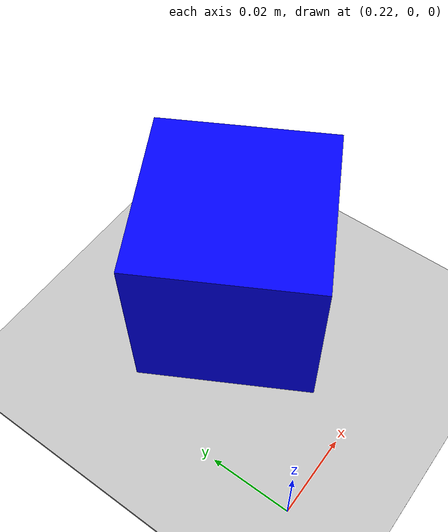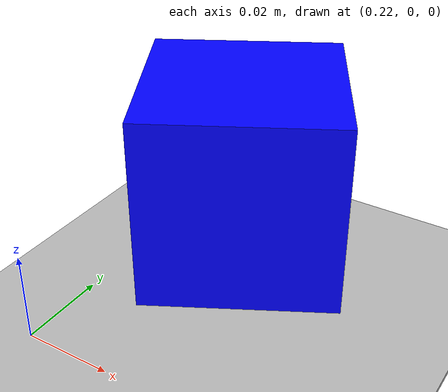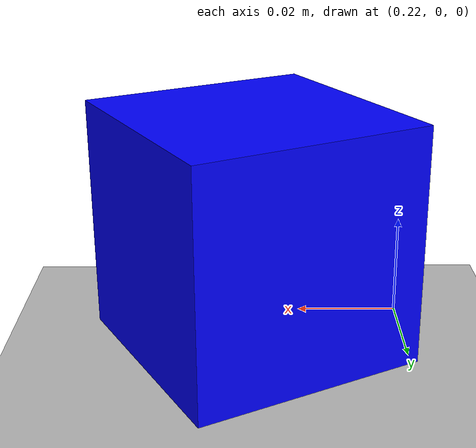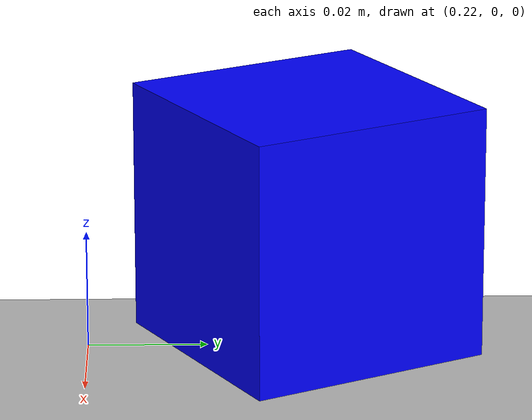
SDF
<sdf version='1.6'>
    <world name='default'>
        <!-- A global light source -->
        <include>
            <uri>model://sun</uri>
        </include>

        <!-- A ground plane -->
        <include>
            <uri>model://ground_plane</uri>
        </include>

        <!-- Niryo Workspace -->
        <model name='workspace_1'>
            <include>
                <uri>model://workspace_1</uri>
            </include>
            <pose frame=''>0.25 0.0 0.0005 0.0 0.0 0.0</pose>
        </model>

        <!--CUBES-->
        <model name='cube_blue'>
            <include>
                <uri>model://cube_blue</uri>
            </include>
            <pose frame=''>0.25 0.0357 0.012 0.0 0.0 0.5</pose>
        </model>

        <physics name='default_physics' default='0' type='ode'>
            <max_step_size>0.001</max_step_size>
            <real_time_factor>1</real_time_factor>
            <real_time_update_rate>1000</real_time_update_rate>
        </physics>
        <!--GUI-->
        <gui fullscreen='0'>
            <camera name='user_camera'>
                <pose frame=''>0.198 -0.823 0.916 0 0.763 1.592</pose>
                <view_controller>orbit</view_controller>
                <projection_type>perspective</projection_type>
            </camera>
        </gui>

    </world>
</sdf>

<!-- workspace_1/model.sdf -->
<sdf version='1.6'>
    <model name='Workspace1'>
        <link name='workspace_link'>
            <inertial>
                <mass>1000.0</mass>
                <inertia>
                    <ixx>4.508</ixx>
                    <ixy>0</ixy>
                    <ixz>0</ixz>
                    <iyy>8.184</iyy>
                    <iyz>0</iyz>
                    <izz>11.026</izz>
                </inertia>
                <pose frame=''>0 0 0 0 -0 0</pose>
            </inertial>
            <pose frame=''>0 0 0 0 -0 0</pose>
            <gravity>1</gravity>
            <self_collide>0</self_collide>
            <kinematic>0</kinematic>
            <enable_wind>0</enable_wind>

            <visual name='visual'>
                <cast_shadows>false</cast_shadows>
                <pose frame=''>0 0 0 0 0 0</pose>
                <geometry>
                    <box>
                        <size>0.21 0.297 0.001</size>
                    </box>
                </geometry>
                <material>
                    <script>
                        <uri>media://materials/scripts/workspace.material</uri>
                        <name>Niryo/Workspace1</name>
                    </script>
                </material>

                <transparency>0</transparency>
                <cast_shadows>1</cast_shadows>
            </visual>
            <collision name='collision'>
                <laser_retro>0</laser_retro>
                <max_contacts>10</max_contacts>
                <pose frame=''>0 0 0 0 -0 0</pose>
                <geometry>
                    <box>
                        <size>0.21 0.297 0.001</size>
                    </box>
                </geometry>
                <surface>
                    <friction>
                        <ode>
                            <mu>1</mu>
                            <mu2>1</mu2>
                            <fdir1>0 0 0</fdir1>
                            <slip1>0</slip1>
                            <slip2>0</slip2>
                        </ode>
                        <torsional>
                            <coefficient>1</coefficient>
                            <patch_radius>0</patch_radius>
                            <surface_radius>0</surface_radius>
                            <use_patch_radius>1</use_patch_radius>
                            <ode>
                                <slip>0</slip>
                            </ode>
                        </torsional>
                    </friction>
                    <bounce>
                        <restitution_coefficient>0</restitution_coefficient>
                        <threshold>1e+06</threshold>
                    </bounce>
                    <contact>
                        <collide_without_contact>0</collide_without_contact>
                        <collide_without_contact_bitmask>1</collide_without_contact_bitmask>
                        <collide_bitmask>1</collide_bitmask>
                        <ode>
                            <soft_cfm>0</soft_cfm>
                            <soft_erp>0.2</soft_erp>
                            <kp>1e+13</kp>
                            <kd>1</kd>
                            <max_vel>0.01</max_vel>
                            <min_depth>0</min_depth>
                        </ode>
                        <bullet>
                            <split_impulse>1</split_impulse>
                            <split_impulse_penetration_threshold>-0.01</split_impulse_penetration_threshold>
                            <soft_cfm>0</soft_cfm>
                            <soft_erp>0.2</soft_erp>
                            <kp>1e+13</kp>
                            <kd>1</kd>
                        </bullet>
                    </contact>
                </surface>
            </collision>
        </link>
        <static>0</static>
        <allow_auto_disable>1</allow_auto_disable>
    </model>
</sdf>

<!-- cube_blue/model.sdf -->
<sdf version="1.5">
  <model name="cube_blue">
    <link name="link">
      <pose>0 0 0.02 0 0 0</pose>
      <inertial>
        <mass>0.027</mass>
        <inertia>
          <ixx>2.3541666666666672e-05</ixx>
          <ixy>0</ixy>
          <ixz>0</ixz>
          <iyy>2.3541666666666672e-05</iyy>
          <iyz>0</iyz>
          <izz>2.3541666666666672e-05</izz>
        </inertia>
      </inertial>

      <collision name="collision">
        <geometry>
          <box>
            <size>0.04 0.04 0.04</size>
          </box>
        </geometry>
        <surface>
          <contact>
            <!-- Red Pine coefficients for longitudinal axis of the wood
                 according to:
                 http://www.fpl.fs.fed.us/documnts/fplgtr/fplgtr113/ch04.pdf -->
            <poissons_ratio>0.347</poissons_ratio>
            <elastic_modulus>8.8e+09</elastic_modulus>
            <ode>
              <kp>100000</kp>
              <kd>1</kd>
              <max_vel>1.0</max_vel>
              <min_depth>0.001</min_depth>
            </ode>
          </contact>
          <friction>
            <torsional>
              <coefficient>1.0</coefficient>
              <use_patch_radius>0</use_patch_radius>
              <surface_radius>0.05</surface_radius>
            </torsional>
          </friction>
        </surface>
      </collision>

      <visual name="visual">
        <geometry>
          <box>
            <size>0.04 0.04 0.04</size>
          </box>
        </geometry>
        <material>
         <ambient>0 0 1 1</ambient>
				 <diffuse>0 0 1 1</diffuse>
				 <specular>0.1 0.1 0.1 1</specular>
				 <emissive>0 0 0 0</emissive>
        </material>
      </visual>

    </link>
  </model>
</sdf>
